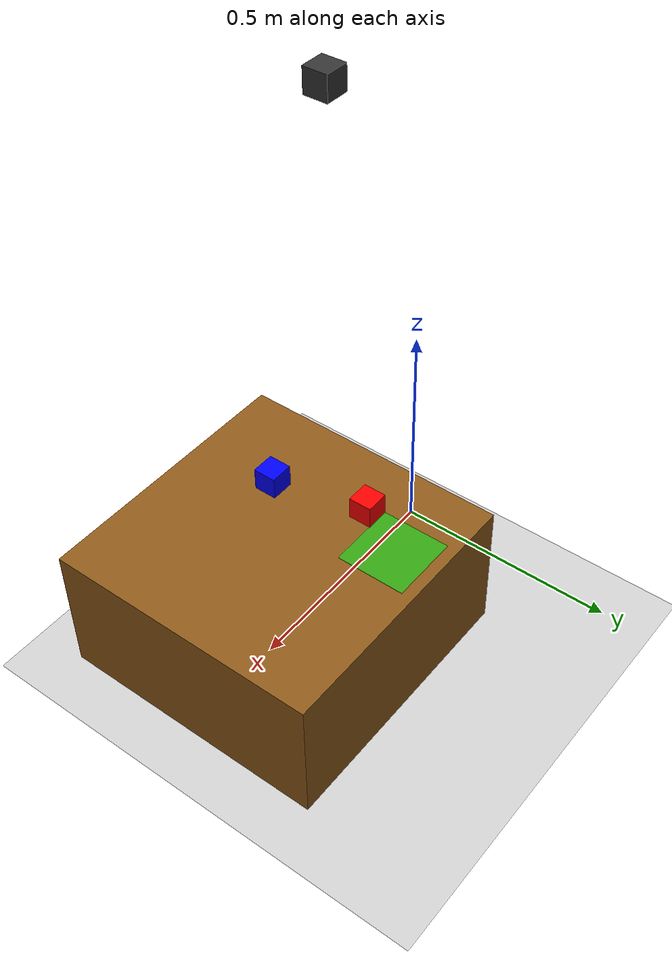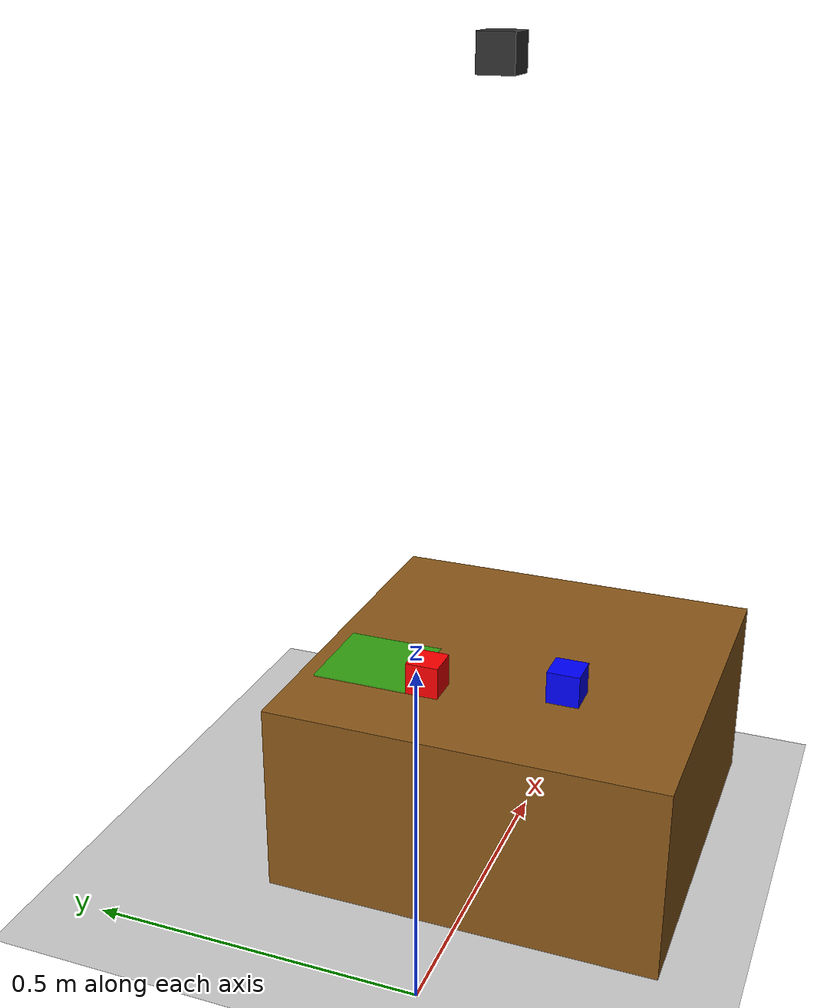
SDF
<?xml version="1.0"?>
<sdf version="1.6">
  <world name="arm_world">

    <!-- ── Gravity ────────────────────────────────────────────────── -->
    <gravity>0 0 -9.81</gravity>

    <!-- ── Physics engine settings ───────────────────────────────── -->
    <!-- ODE: Open Dynamics Engine, default for Gazebo Classic -->
    <physics type="ode" default="true">
      <max_step_size>0.001</max_step_size>
      <real_time_factor>1.0</real_time_factor>
      <real_time_update_rate>1000</real_time_update_rate>
      <ode>
        <solver>
          <type>quick</type>
          <iters>300</iters>
          <precon_iters>0</precon_iters>
          <sor>1.0</sor>
        </solver>
        <constraints>
          <cfm>1e-5</cfm>
          <erp>0.2</erp>
          <contact_max_correcting_vel>0.1</contact_max_correcting_vel>
          <contact_surface_layer>0.002</contact_surface_layer>
        </constraints>
      </ode>
    </physics>

    <!-- ── Sunlight ───────────────────────────────────────────────── -->
    <include>
      <uri>model://sun</uri>
    </include>

    <!-- ── Ground Plane ───────────────────────────────────────────── -->
    <include>
      <uri>model://ground_plane</uri>
    </include>

    <!-- ── Ambient Scene Settings ─────────────────────────────────── -->
    <scene>
      <ambient>0.4 0.4 0.4 1</ambient>
      <background>0.7 0.7 0.7 1</background>
      <sky>
        <clouds>
          <speed>12</speed>
        </clouds>
      </sky>
      <shadows>true</shadows>
    </scene>

    <!-- ── Worktable ───────────────────────────────────────────────── -->
    <!-- A 0.3x0.8x0.30 m table supporting the robot base and workspace -->
    <model name="worktable">
      <static>true</static>
      <pose>0.45 0 0.15 0 0 0</pose>
      <link name="table_link">
        <collision name="table_collision">
          <geometry>
            <box><size>0.60 0.60 0.30</size></box>
          </geometry>
          <surface>
            <friction>
              <ode>
                <mu>0.8</mu>
                <mu2>0.8</mu2>
              </ode>
            </friction>
          </surface>
        </collision>
        <visual name="table_visual">
          <geometry>
            <box><size>0.60 0.60 0.30</size></box>
          </geometry>
          <material>
            <ambient>0.55 0.35 0.1 1</ambient>
            <diffuse>0.55 0.35 0.1 1</diffuse>
          </material>
        </visual>
        <inertial>
          <mass>20.0</mass>
          <inertia>
            <ixx>1.067</ixx><ixy>0</ixy><ixz>0</ixz>
            <iyy>1.717</iyy><iyz>0</iyz>
            <izz>2.667</izz>
          </inertia>
        </inertial>
      </link>
    </model>

    <!-- ── Overhead Camera ────────────────────────────────────────── -->
    <model name="overhead_camera">
      <static>true</static>
      <pose>0.28 0 1.2 0 1.5708 0</pose>
      <link name="overhead_camera_link">
        <visual name="visual">
          <geometry>
            <box><size>0.05 0.05 0.05</size></box>
          </geometry>
          <material>
            <ambient>0.2 0.2 0.2 1</ambient>
            <diffuse>0.2 0.2 0.2 1</diffuse>
          </material>
        </visual>
        <sensor type="camera" name="overhead_camera_sensor">
          <update_rate>30.0</update_rate>
          <visualize>true</visualize>
          <camera name="overhead_camera">
            <horizontal_fov>1.39626</horizontal_fov>
            <image>
              <width>1920</width>
              <height>1080</height>
              <format>R8G8B8</format>
            </image>
            <clip>
              <near>0.01</near>
              <far>5.0</far>
            </clip>
            <noise>
              <type>gaussian</type>
              <mean>0.0</mean>
              <stddev>0.007</stddev>
            </noise>
          </camera>
          <plugin name="camera_controller" filename="libgazebo_ros_camera.so">
            <alwaysOn>true</alwaysOn>
            <updateRate>30.0</updateRate>
            <cameraName>overhead_camera</cameraName>
            <imageTopicName>/overhead_camera/image_raw</imageTopicName>
            <cameraInfoTopicName>/overhead_camera/camera_info</cameraInfoTopicName>
            <frameName>overhead_camera_link</frameName>
          </plugin>
        </sensor>
      </link>
    </model>

    <!-- ── Red Cube ───────────────────────────────────────────────── -->
    <model name="red_cube">
      <pose>0.30 0.1 0.325 0 0 0</pose>
      <link name="link">
        <collision name="collision">
          <geometry>
            <box><size>0.05 0.05 0.05</size></box>
          </geometry>
          <surface>
            <friction>
              <ode>
                <mu>2.0</mu>
                <mu2>2.0</mu2>
                <slip1>0.0</slip1>
                <slip2>0.0</slip2>
              </ode>
            </friction>
            <contact>
              <ode>
                <kp>100000.0</kp>
                <kd>10.0</kd>
                <max_vel>0.1</max_vel>
                <min_depth>0.001</min_depth>
                <soft_cfm>0.0</soft_cfm>
                <soft_erp>0.2</soft_erp>
              </ode>
            </contact>
          </surface>
        </collision>
        <visual name="visual">
          <geometry>
            <box><size>0.05 0.05 0.05</size></box>
          </geometry>
          <material>
            <ambient>1 0 0 1</ambient>
            <diffuse>1 0 0 1</diffuse>
          </material>
        </visual>
        <inertial>
          <mass>0.05</mass>
          <inertia>
            <ixx>0.0000208</ixx><ixy>0</ixy><ixz>0</ixz>
            <iyy>0.0000208</iyy><iyz>0</iyz>
            <izz>0.0000208</izz>
          </inertia>
        </inertial>
      </link>
    </model>

    <!-- ── Blue Cube ───────────────────────────────────────────────── -->
    <model name="blue_cube">
      <pose>0.35 -0.1 0.325 0 0 0</pose>
      <link name="link">
        <collision name="collision">
          <geometry>
            <box><size>0.05 0.05 0.05</size></box>
          </geometry>
          <surface>
            <friction>
              <ode>
                <mu>2.0</mu>
                <mu2>2.0</mu2>
                <slip1>0.0</slip1>
                <slip2>0.0</slip2>
              </ode>
            </friction>
            <contact>
              <ode>
                <kp>100000.0</kp>
                <kd>10.0</kd>
                <max_vel>0.1</max_vel>
                <min_depth>0.001</min_depth>
                <soft_cfm>0.0</soft_cfm>
                <soft_erp>0.2</soft_erp>
              </ode>
            </contact>
          </surface>
        </collision>
        <visual name="visual">
          <geometry>
            <box><size>0.05 0.05 0.05</size></box>
          </geometry>
          <material>
            <ambient>0 0 1 1</ambient>
            <diffuse>0 0 1 1</diffuse>
          </material>
        </visual>
        <inertial>
          <mass>0.05</mass>
          <inertia>
            <ixx>0.0000208</ixx><ixy>0</ixy><ixz>0</ixz>
            <iyy>0.0000208</iyy><iyz>0</iyz>
            <izz>0.0000208</izz>
          </inertia>
        </inertial>
      </link>
    </model>

    <!-- ── Place Zone (Green Pad) ─────────────────────────────────── -->
    <!-- Visual marker showing where the arm should place objects -->
    <model name="place_zone">
      <static>true</static>
      <pose>0.35 0.2 0.301 0 0 0</pose>    <!-- on table surface -->
      <link name="pad_link">
        <collision name="pad_collision">
          <geometry>
            <box><size>0.15 0.15 0.002</size></box>
          </geometry>
        </collision>
        <visual name="pad_visual">
          <geometry>
            <box><size>0.15 0.15 0.002</size></box>
          </geometry>
          <material>
            <ambient>0.1 0.8 0.1 0.7</ambient>
            <diffuse>0.1 0.8 0.1 0.7</diffuse>
          </material>
        </visual>
        <inertial>
          <mass>0.01</mass>
          <inertia>
            <ixx>0.0000031</ixx><ixy>0</ixy><ixz>0</ixz>
            <iyy>0.0000031</iyy><iyz>0</iyz>
            <izz>0.0000056</izz>
          </inertia>
        </inertial>
      </link>
    </model>

    <!-- ── GUI Camera position ────────────────────────────────────── -->
    <gui fullscreen="0">
      <camera name="user_camera">
        <pose>1.0 -1.2 1.8 0 0.65 2.2</pose>
        <view_controller>orbit</view_controller>
      </camera>
    </gui>

  </world>
</sdf>
